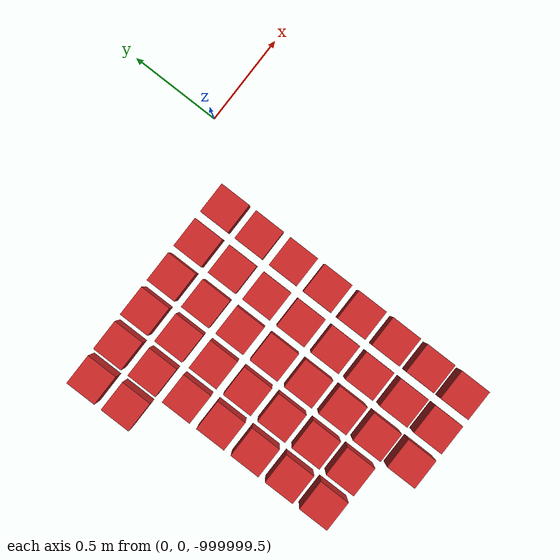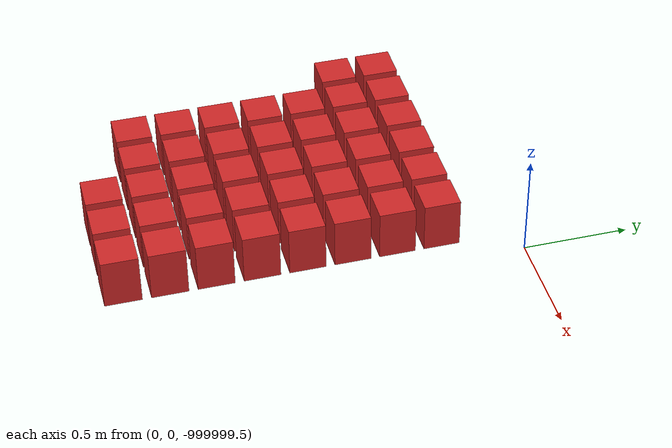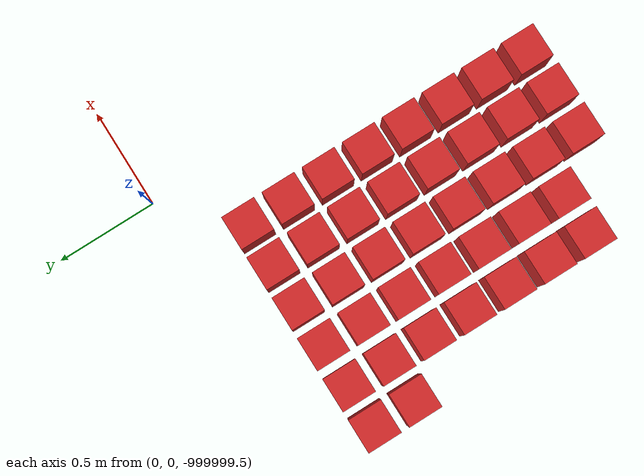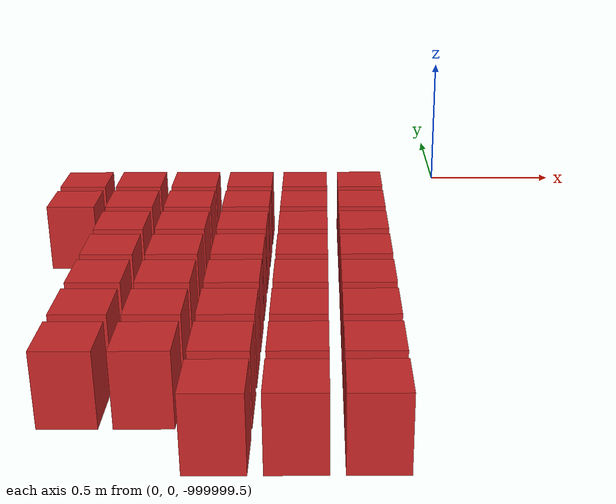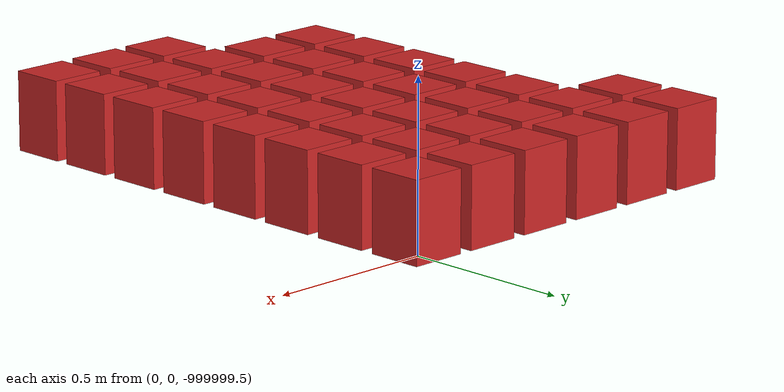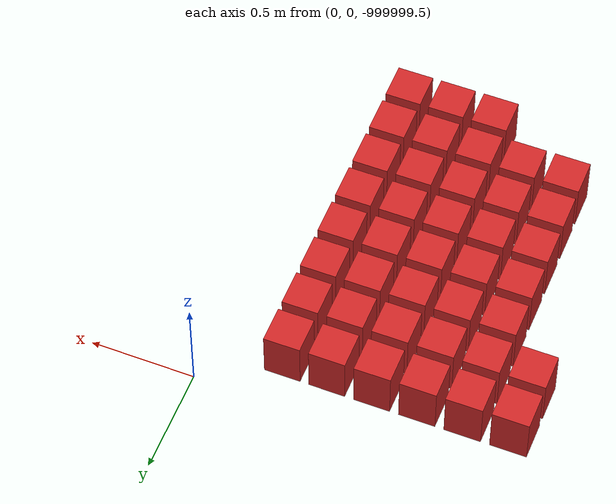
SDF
<sdf version="1.7">
 <world name="default">
  <model name="ground_plane">
   <static>1</static>
   <link name="link">
    <collision name="collision">
     <geometry><plane><normal>0 0 1</normal><size>100 100</size></plane></geometry>
     <surface>
      <contact><collide_bitmask>65535</collide_bitmask></contact>
      <friction><ode><mu>100</mu><mu2>50</mu2></ode></friction>
     </surface>
    </collision>
    <visual name="visual">
     <cast_shadows>0</cast_shadows>
     <geometry><plane><normal>0 0 1</normal><size>100 100</size></plane></geometry>
     <material>
      <script><uri>file://media/materials/scripts/gazebo.material</uri><name>Gazebo/Grey</name></script>
     </material>
    </visual>
   </link>
  </model>
  <model name="wall_77">
   <link name="link">
    <pose>0 0 0.5 0 -0 0</pose>
    <inertial>
     <mass>0.5167</mass>
     <inertia>
      <ixx>0.000861167</ixx>
      <ixy>0</ixy>
      <ixz>0</ixz>
      <iyy>0.000861167</iyy>
      <iyz>0</iyz>
      <izz>0.000861167</izz>
     </inertia>
    </inertial>
    <collision name="collision">
     <geometry><box><size>0.21 0.21 0.25</size></box></geometry>
     <surface>
      <contact>
       <poissons_ratio>0.347</poissons_ratio>
       <elastic_modulus>8.8e+09</elastic_modulus>
       <ode><kp>100000</kp><kd>100</kd><max_vel>100</max_vel><min_depth>0.001</min_depth></ode>
      </contact>
      <friction>
       <torsional>
        <coefficient>1</coefficient>
        <use_patch_radius>0</use_patch_radius>
        <surface_radius>0.01</surface_radius>
       </torsional>
      </friction>
     </surface>
    </collision>
    <visual name="visual">
     <geometry><box><size>0.175 0.175 0.25</size></box></geometry>
     <material>
      <script><uri>file://media/materials/scripts/gazebo.material</uri><name>Gazebo/Red</name></script>
     </material>
    </visual>
   </link>
   <pose>-0.76087 -1.84783 -1e+06 0 -0 0</pose>
  </model>
  <model name="wall_78">
   <link name="link">
    <pose>0 0 0.5 0 -0 0</pose>
    <inertial>
     <mass>0.5167</mass>
     <inertia>
      <ixx>0.000861167</ixx>
      <ixy>0</ixy>
      <ixz>0</ixz>
      <iyy>0.000861167</iyy>
      <iyz>0</iyz>
      <izz>0.000861167</izz>
     </inertia>
    </inertial>
    <collision name="collision">
     <geometry><box><size>0.21 0.21 0.25</size></box></geometry>
     <surface>
      <contact>
       <poissons_ratio>0.347</poissons_ratio>
       <elastic_modulus>8.8e+09</elastic_modulus>
       <ode><kp>100000</kp><kd>100</kd><max_vel>100</max_vel><min_depth>0.001</min_depth></ode>
      </contact>
      <friction>
       <torsional>
        <coefficient>1</coefficient>
        <use_patch_radius>0</use_patch_radius>
        <surface_radius>0.01</surface_radius>
       </torsional>
      </friction>
     </surface>
    </collision>
    <visual name="visual">
     <geometry><box><size>0.175 0.175 0.25</size></box></geometry>
     <material>
      <script><uri>file://media/materials/scripts/gazebo.material</uri><name>Gazebo/Red</name></script>
     </material>
    </visual>
   </link>
   <pose>-0.543478 -1.84783 -1e+06 0 -0 0</pose>
  </model>
  <model name="wall_79">
   <link name="link">
    <pose>0 0 0.5 0 -0 0</pose>
    <inertial>
     <mass>0.5167</mass>
     <inertia>
      <ixx>0.000861167</ixx>
      <ixy>0</ixy>
      <ixz>0</ixz>
      <iyy>0.000861167</iyy>
      <iyz>0</iyz>
      <izz>0.000861167</izz>
     </inertia>
    </inertial>
    <collision name="collision">
     <geometry><box><size>0.21 0.21 0.25</size></box></geometry>
     <surface>
      <contact>
       <poissons_ratio>0.347</poissons_ratio>
       <elastic_modulus>8.8e+09</elastic_modulus>
       <ode><kp>100000</kp><kd>100</kd><max_vel>100</max_vel><min_depth>0.001</min_depth></ode>
      </contact>
      <friction>
       <torsional>
        <coefficient>1</coefficient>
        <use_patch_radius>0</use_patch_radius>
        <surface_radius>0.01</surface_radius>
       </torsional>
      </friction>
     </surface>
    </collision>
    <visual name="visual">
     <geometry><box><size>0.175 0.175 0.25</size></box></geometry>
     <material>
      <script><uri>file://media/materials/scripts/gazebo.material</uri><name>Gazebo/Red</name></script>
     </material>
    </visual>
   </link>
   <pose>-0.326087 -1.84783 -1e+06 0 -0 0</pose>
  </model>
  <model name="wall_98">
   <link name="link">
    <pose>0 0 0.5 0 -0 0</pose>
    <inertial>
     <mass>0.5167</mass>
     <inertia>
      <ixx>0.000861167</ixx>
      <ixy>0</ixy>
      <ixz>0</ixz>
      <iyy>0.000861167</iyy>
      <iyz>0</iyz>
      <izz>0.000861167</izz>
     </inertia>
    </inertial>
    <collision name="collision">
     <geometry><box><size>0.21 0.21 0.25</size></box></geometry>
     <surface>
      <contact>
       <poissons_ratio>0.347</poissons_ratio>
       <elastic_modulus>8.8e+09</elastic_modulus>
       <ode><kp>100000</kp><kd>100</kd><max_vel>100</max_vel><min_depth>0.001</min_depth></ode>
      </contact>
      <friction>
       <torsional>
        <coefficient>1</coefficient>
        <use_patch_radius>0</use_patch_radius>
        <surface_radius>0.01</surface_radius>
       </torsional>
      </friction>
     </surface>
    </collision>
    <visual name="visual">
     <geometry><box><size>0.175 0.175 0.25</size></box></geometry>
     <material>
      <script><uri>file://media/materials/scripts/gazebo.material</uri><name>Gazebo/Red</name></script>
     </material>
    </visual>
   </link>
   <pose>-1.19565 -1.63043 -1e+06 0 -0 0</pose>
  </model>
  <model name="wall_99">
   <link name="link">
    <pose>0 0 0.5 0 -0 0</pose>
    <inertial>
     <mass>0.5167</mass>
     <inertia>
      <ixx>0.000861167</ixx>
      <ixy>0</ixy>
      <ixz>0</ixz>
      <iyy>0.000861167</iyy>
      <iyz>0</iyz>
      <izz>0.000861167</izz>
     </inertia>
    </inertial>
    <collision name="collision">
     <geometry><box><size>0.21 0.21 0.25</size></box></geometry>
     <surface>
      <contact>
       <poissons_ratio>0.347</poissons_ratio>
       <elastic_modulus>8.8e+09</elastic_modulus>
       <ode><kp>100000</kp><kd>100</kd><max_vel>100</max_vel><min_depth>0.001</min_depth></ode>
      </contact>
      <friction>
       <torsional>
        <coefficient>1</coefficient>
        <use_patch_radius>0</use_patch_radius>
        <surface_radius>0.01</surface_radius>
       </torsional>
      </friction>
     </surface>
    </collision>
    <visual name="visual">
     <geometry><box><size>0.175 0.175 0.25</size></box></geometry>
     <material>
      <script><uri>file://media/materials/scripts/gazebo.material</uri><name>Gazebo/Red</name></script>
     </material>
    </visual>
   </link>
   <pose>-0.978261 -1.63043 -1e+06 0 -0 0</pose>
  </model>
  <model name="wall_100">
   <link name="link">
    <pose>0 0 0.5 0 -0 0</pose>
    <inertial>
     <mass>0.5167</mass>
     <inertia>
      <ixx>0.000861167</ixx>
      <ixy>0</ixy>
      <ixz>0</ixz>
      <iyy>0.000861167</iyy>
      <iyz>0</iyz>
      <izz>0.000861167</izz>
     </inertia>
    </inertial>
    <collision name="collision">
     <geometry><box><size>0.21 0.21 0.25</size></box></geometry>
     <surface>
      <contact>
       <poissons_ratio>0.347</poissons_ratio>
       <elastic_modulus>8.8e+09</elastic_modulus>
       <ode><kp>100000</kp><kd>100</kd><max_vel>100</max_vel><min_depth>0.001</min_depth></ode>
      </contact>
      <friction>
       <torsional>
        <coefficient>1</coefficient>
        <use_patch_radius>0</use_patch_radius>
        <surface_radius>0.01</surface_radius>
       </torsional>
      </friction>
     </surface>
    </collision>
    <visual name="visual">
     <geometry><box><size>0.175 0.175 0.25</size></box></geometry>
     <material>
      <script><uri>file://media/materials/scripts/gazebo.material</uri><name>Gazebo/Red</name></script>
     </material>
    </visual>
   </link>
   <pose>-0.76087 -1.63043 -1e+06 0 -0 0</pose>
  </model>
  <model name="wall_101">
   <link name="link">
    <pose>0 0 0.5 0 -0 0</pose>
    <inertial>
     <mass>0.5167</mass>
     <inertia>
      <ixx>0.000861167</ixx>
      <ixy>0</ixy>
      <ixz>0</ixz>
      <iyy>0.000861167</iyy>
      <iyz>0</iyz>
      <izz>0.000861167</izz>
     </inertia>
    </inertial>
    <collision name="collision">
     <geometry><box><size>0.21 0.21 0.25</size></box></geometry>
     <surface>
      <contact>
       <poissons_ratio>0.347</poissons_ratio>
       <elastic_modulus>8.8e+09</elastic_modulus>
       <ode><kp>100000</kp><kd>100</kd><max_vel>100</max_vel><min_depth>0.001</min_depth></ode>
      </contact>
      <friction>
       <torsional>
        <coefficient>1</coefficient>
        <use_patch_radius>0</use_patch_radius>
        <surface_radius>0.01</surface_radius>
       </torsional>
      </friction>
     </surface>
    </collision>
    <visual name="visual">
     <geometry><box><size>0.175 0.175 0.25</size></box></geometry>
     <material>
      <script><uri>file://media/materials/scripts/gazebo.material</uri><name>Gazebo/Red</name></script>
     </material>
    </visual>
   </link>
   <pose>-0.543478 -1.63043 -1e+06 0 -0 0</pose>
  </model>
  <model name="wall_102">
   <link name="link">
    <pose>0 0 0.5 0 -0 0</pose>
    <inertial>
     <mass>0.5167</mass>
     <inertia>
      <ixx>0.000861167</ixx>
      <ixy>0</ixy>
      <ixz>0</ixz>
      <iyy>0.000861167</iyy>
      <iyz>0</iyz>
      <izz>0.000861167</izz>
     </inertia>
    </inertial>
    <collision name="collision">
     <geometry><box><size>0.21 0.21 0.25</size></box></geometry>
     <surface>
      <contact>
       <poissons_ratio>0.347</poissons_ratio>
       <elastic_modulus>8.8e+09</elastic_modulus>
       <ode><kp>100000</kp><kd>100</kd><max_vel>100</max_vel><min_depth>0.001</min_depth></ode>
      </contact>
      <friction>
       <torsional>
        <coefficient>1</coefficient>
        <use_patch_radius>0</use_patch_radius>
        <surface_radius>0.01</surface_radius>
       </torsional>
      </friction>
     </surface>
    </collision>
    <visual name="visual">
     <geometry><box><size>0.175 0.175 0.25</size></box></geometry>
     <material>
      <script><uri>file://media/materials/scripts/gazebo.material</uri><name>Gazebo/Red</name></script>
     </material>
    </visual>
   </link>
   <pose>-0.326087 -1.63043 -1e+06 0 -0 0</pose>
  </model>
  <model name="wall_121">
   <link name="link">
    <pose>0 0 0.5 0 -0 0</pose>
    <inertial>
     <mass>0.5167</mass>
     <inertia>
      <ixx>0.000861167</ixx>
      <ixy>0</ixy>
      <ixz>0</ixz>
      <iyy>0.000861167</iyy>
      <iyz>0</iyz>
      <izz>0.000861167</izz>
     </inertia>
    </inertial>
    <collision name="collision">
     <geometry><box><size>0.21 0.21 0.25</size></box></geometry>
     <surface>
      <contact>
       <poissons_ratio>0.347</poissons_ratio>
       <elastic_modulus>8.8e+09</elastic_modulus>
       <ode><kp>100000</kp><kd>100</kd><max_vel>100</max_vel><min_depth>0.001</min_depth></ode>
      </contact>
      <friction>
       <torsional>
        <coefficient>1</coefficient>
        <use_patch_radius>0</use_patch_radius>
        <surface_radius>0.01</surface_radius>
       </torsional>
      </friction>
     </surface>
    </collision>
    <visual name="visual">
     <geometry><box><size>0.175 0.175 0.25</size></box></geometry>
     <material>
      <script><uri>file://media/materials/scripts/gazebo.material</uri><name>Gazebo/Red</name></script>
     </material>
    </visual>
   </link>
   <pose>-1.19565 -1.41304 -1e+06 0 -0 0</pose>
  </model>
  <model name="wall_122">
   <link name="link">
    <pose>0 0 0.5 0 -0 0</pose>
    <inertial>
     <mass>0.5167</mass>
     <inertia>
      <ixx>0.000861167</ixx>
      <ixy>0</ixy>
      <ixz>0</ixz>
      <iyy>0.000861167</iyy>
      <iyz>0</iyz>
      <izz>0.000861167</izz>
     </inertia>
    </inertial>
    <collision name="collision">
     <geometry><box><size>0.21 0.21 0.25</size></box></geometry>
     <surface>
      <contact>
       <poissons_ratio>0.347</poissons_ratio>
       <elastic_modulus>8.8e+09</elastic_modulus>
       <ode><kp>100000</kp><kd>100</kd><max_vel>100</max_vel><min_depth>0.001</min_depth></ode>
      </contact>
      <friction>
       <torsional>
        <coefficient>1</coefficient>
        <use_patch_radius>0</use_patch_radius>
        <surface_radius>0.01</surface_radius>
       </torsional>
      </friction>
     </surface>
    </collision>
    <visual name="visual">
     <geometry><box><size>0.175 0.175 0.25</size></box></geometry>
     <material>
      <script><uri>file://media/materials/scripts/gazebo.material</uri><name>Gazebo/Red</name></script>
     </material>
    </visual>
   </link>
   <pose>-0.978261 -1.41304 -1e+06 0 -0 0</pose>
  </model>
  <model name="wall_123">
   <link name="link">
    <pose>0 0 0.5 0 -0 0</pose>
    <inertial>
     <mass>0.5167</mass>
     <inertia>
      <ixx>0.000861167</ixx>
      <ixy>0</ixy>
      <ixz>0</ixz>
      <iyy>0.000861167</iyy>
      <iyz>0</iyz>
      <izz>0.000861167</izz>
     </inertia>
    </inertial>
    <collision name="collision">
     <geometry><box><size>0.21 0.21 0.25</size></box></geometry>
     <surface>
      <contact>
       <poissons_ratio>0.347</poissons_ratio>
       <elastic_modulus>8.8e+09</elastic_modulus>
       <ode><kp>100000</kp><kd>100</kd><max_vel>100</max_vel><min_depth>0.001</min_depth></ode>
      </contact>
      <friction>
       <torsional>
        <coefficient>1</coefficient>
        <use_patch_radius>0</use_patch_radius>
        <surface_radius>0.01</surface_radius>
       </torsional>
      </friction>
     </surface>
    </collision>
    <visual name="visual">
     <geometry><box><size>0.175 0.175 0.25</size></box></geometry>
     <material>
      <script><uri>file://media/materials/scripts/gazebo.material</uri><name>Gazebo/Red</name></script>
     </material>
    </visual>
   </link>
   <pose>-0.76087 -1.41304 -1e+06 0 -0 0</pose>
  </model>
  <model name="wall_124">
   <link name="link">
    <pose>0 0 0.5 0 -0 0</pose>
    <inertial>
     <mass>0.5167</mass>
     <inertia>
      <ixx>0.000861167</ixx>
      <ixy>0</ixy>
      <ixz>0</ixz>
      <iyy>0.000861167</iyy>
      <iyz>0</iyz>
      <izz>0.000861167</izz>
     </inertia>
    </inertial>
    <collision name="collision">
     <geometry><box><size>0.21 0.21 0.25</size></box></geometry>
     <surface>
      <contact>
       <poissons_ratio>0.347</poissons_ratio>
       <elastic_modulus>8.8e+09</elastic_modulus>
       <ode><kp>100000</kp><kd>100</kd><max_vel>100</max_vel><min_depth>0.001</min_depth></ode>
      </contact>
      <friction>
       <torsional>
        <coefficient>1</coefficient>
        <use_patch_radius>0</use_patch_radius>
        <surface_radius>0.01</surface_radius>
       </torsional>
      </friction>
     </surface>
    </collision>
    <visual name="visual">
     <geometry><box><size>0.175 0.175 0.25</size></box></geometry>
     <material>
      <script><uri>file://media/materials/scripts/gazebo.material</uri><name>Gazebo/Red</name></script>
     </material>
    </visual>
   </link>
   <pose>-0.543478 -1.41304 -1e+06 0 -0 0</pose>
  </model>
  <model name="wall_125">
   <link name="link">
    <pose>0 0 0.5 0 -0 0</pose>
    <inertial>
     <mass>0.5167</mass>
     <inertia>
      <ixx>0.000861167</ixx>
      <ixy>0</ixy>
      <ixz>0</ixz>
      <iyy>0.000861167</iyy>
      <iyz>0</iyz>
      <izz>0.000861167</izz>
     </inertia>
    </inertial>
    <collision name="collision">
     <geometry><box><size>0.21 0.21 0.25</size></box></geometry>
     <surface>
      <contact>
       <poissons_ratio>0.347</poissons_ratio>
       <elastic_modulus>8.8e+09</elastic_modulus>
       <ode><kp>100000</kp><kd>100</kd><max_vel>100</max_vel><min_depth>0.001</min_depth></ode>
      </contact>
      <friction>
       <torsional>
        <coefficient>1</coefficient>
        <use_patch_radius>0</use_patch_radius>
        <surface_radius>0.01</surface_radius>
       </torsional>
      </friction>
     </surface>
    </collision>
    <visual name="visual">
     <geometry><box><size>0.175 0.175 0.25</size></box></geometry>
     <material>
      <script><uri>file://media/materials/scripts/gazebo.material</uri><name>Gazebo/Red</name></script>
     </material>
    </visual>
   </link>
   <pose>-0.326087 -1.41304 -1e+06 0 -0 0</pose>
  </model>
  <model name="wall_144">
   <link name="link">
    <pose>0 0 0.5 0 -0 0</pose>
    <inertial>
     <mass>0.5167</mass>
     <inertia>
      <ixx>0.000861167</ixx>
      <ixy>0</ixy>
      <ixz>0</ixz>
      <iyy>0.000861167</iyy>
      <iyz>0</iyz>
      <izz>0.000861167</izz>
     </inertia>
    </inertial>
    <collision name="collision">
     <geometry><box><size>0.21 0.21 0.25</size></box></geometry>
     <surface>
      <contact>
       <poissons_ratio>0.347</poissons_ratio>
       <elastic_modulus>8.8e+09</elastic_modulus>
       <ode><kp>100000</kp><kd>100</kd><max_vel>100</max_vel><min_depth>0.001</min_depth></ode>
      </contact>
      <friction>
       <torsional>
        <coefficient>1</coefficient>
        <use_patch_radius>0</use_patch_radius>
        <surface_radius>0.01</surface_radius>
       </torsional>
      </friction>
     </surface>
    </collision>
    <visual name="visual">
     <geometry><box><size>0.175 0.175 0.25</size></box></geometry>
     <material>
      <script><uri>file://media/materials/scripts/gazebo.material</uri><name>Gazebo/Red</name></script>
     </material>
    </visual>
   </link>
   <pose>-1.19565 -1.19565 -1e+06 0 -0 0</pose>
  </model>
  <model name="wall_145">
   <link name="link">
    <pose>0 0 0.5 0 -0 0</pose>
    <inertial>
     <mass>0.5167</mass>
     <inertia>
      <ixx>0.000861167</ixx>
      <ixy>0</ixy>
      <ixz>0</ixz>
      <iyy>0.000861167</iyy>
      <iyz>0</iyz>
      <izz>0.000861167</izz>
     </inertia>
    </inertial>
    <collision name="collision">
     <geometry><box><size>0.21 0.21 0.25</size></box></geometry>
     <surface>
      <contact>
       <poissons_ratio>0.347</poissons_ratio>
       <elastic_modulus>8.8e+09</elastic_modulus>
       <ode><kp>100000</kp><kd>100</kd><max_vel>100</max_vel><min_depth>0.001</min_depth></ode>
      </contact>
      <friction>
       <torsional>
        <coefficient>1</coefficient>
        <use_patch_radius>0</use_patch_radius>
        <surface_radius>0.01</surface_radius>
       </torsional>
      </friction>
     </surface>
    </collision>
    <visual name="visual">
     <geometry><box><size>0.175 0.175 0.25</size></box></geometry>
     <material>
      <script><uri>file://media/materials/scripts/gazebo.material</uri><name>Gazebo/Red</name></script>
     </material>
    </visual>
   </link>
   <pose>-0.978261 -1.19565 -1e+06 0 -0 0</pose>
  </model>
  <model name="wall_146">
   <link name="link">
    <pose>0 0 0.5 0 -0 0</pose>
    <inertial>
     <mass>0.5167</mass>
     <inertia>
      <ixx>0.000861167</ixx>
      <ixy>0</ixy>
      <ixz>0</ixz>
      <iyy>0.000861167</iyy>
      <iyz>0</iyz>
      <izz>0.000861167</izz>
     </inertia>
    </inertial>
    <collision name="collision">
     <geometry><box><size>0.21 0.21 0.25</size></box></geometry>
     <surface>
      <contact>
       <poissons_ratio>0.347</poissons_ratio>
       <elastic_modulus>8.8e+09</elastic_modulus>
       <ode><kp>100000</kp><kd>100</kd><max_vel>100</max_vel><min_depth>0.001</min_depth></ode>
      </contact>
      <friction>
       <torsional>
        <coefficient>1</coefficient>
        <use_patch_radius>0</use_patch_radius>
        <surface_radius>0.01</surface_radius>
       </torsional>
      </friction>
     </surface>
    </collision>
    <visual name="visual">
     <geometry><box><size>0.175 0.175 0.25</size></box></geometry>
     <material>
      <script><uri>file://media/materials/scripts/gazebo.material</uri><name>Gazebo/Red</name></script>
     </material>
    </visual>
   </link>
   <pose>-0.76087 -1.19565 -1e+06 0 -0 0</pose>
  </model>
  <model name="wall_147">
   <link name="link">
    <pose>0 0 0.5 0 -0 0</pose>
    <inertial>
     <mass>0.5167</mass>
     <inertia>
      <ixx>0.000861167</ixx>
      <ixy>0</ixy>
      <ixz>0</ixz>
      <iyy>0.000861167</iyy>
      <iyz>0</iyz>
      <izz>0.000861167</izz>
     </inertia>
    </inertial>
    <collision name="collision">
     <geometry><box><size>0.21 0.21 0.25</size></box></geometry>
     <surface>
      <contact>
       <poissons_ratio>0.347</poissons_ratio>
       <elastic_modulus>8.8e+09</elastic_modulus>
       <ode><kp>100000</kp><kd>100</kd><max_vel>100</max_vel><min_depth>0.001</min_depth></ode>
      </contact>
      <friction>
       <torsional>
        <coefficient>1</coefficient>
        <use_patch_radius>0</use_patch_radius>
        <surface_radius>0.01</surface_radius>
       </torsional>
      </friction>
     </surface>
    </collision>
    <visual name="visual">
     <geometry><box><size>0.175 0.175 0.25</size></box></geometry>
     <material>
      <script><uri>file://media/materials/scripts/gazebo.material</uri><name>Gazebo/Red</name></script>
     </material>
    </visual>
   </link>
   <pose>-0.543478 -1.19565 -1e+06 0 -0 0</pose>
  </model>
  <model name="wall_148">
   <link name="link">
    <pose>0 0 0.5 0 -0 0</pose>
    <inertial>
     <mass>0.5167</mass>
     <inertia>
      <ixx>0.000861167</ixx>
      <ixy>0</ixy>
      <ixz>0</ixz>
      <iyy>0.000861167</iyy>
      <iyz>0</iyz>
      <izz>0.000861167</izz>
     </inertia>
    </inertial>
    <collision name="collision">
     <geometry><box><size>0.21 0.21 0.25</size></box></geometry>
     <surface>
      <contact>
       <poissons_ratio>0.347</poissons_ratio>
       <elastic_modulus>8.8e+09</elastic_modulus>
       <ode><kp>100000</kp><kd>100</kd><max_vel>100</max_vel><min_depth>0.001</min_depth></ode>
      </contact>
      <friction>
       <torsional>
        <coefficient>1</coefficient>
        <use_patch_radius>0</use_patch_radius>
        <surface_radius>0.01</surface_radius>
       </torsional>
      </friction>
     </surface>
    </collision>
    <visual name="visual">
     <geometry><box><size>0.175 0.175 0.25</size></box></geometry>
     <material>
      <script><uri>file://media/materials/scripts/gazebo.material</uri><name>Gazebo/Red</name></script>
     </material>
    </visual>
   </link>
   <pose>-0.326087 -1.19565 -1e+06 0 -0 0</pose>
  </model>
  <model name="wall_167">
   <link name="link">
    <pose>0 0 0.5 0 -0 0</pose>
    <inertial>
     <mass>0.5167</mass>
     <inertia>
      <ixx>0.000861167</ixx>
      <ixy>0</ixy>
      <ixz>0</ixz>
      <iyy>0.000861167</iyy>
      <iyz>0</iyz>
      <izz>0.000861167</izz>
     </inertia>
    </inertial>
    <collision name="collision">
     <geometry><box><size>0.21 0.21 0.25</size></box></geometry>
     <surface>
      <contact>
       <poissons_ratio>0.347</poissons_ratio>
       <elastic_modulus>8.8e+09</elastic_modulus>
       <ode><kp>100000</kp><kd>100</kd><max_vel>100</max_vel><min_depth>0.001</min_depth></ode>
      </contact>
      <friction>
       <torsional>
        <coefficient>1</coefficient>
        <use_patch_radius>0</use_patch_radius>
        <surface_radius>0.01</surface_radius>
       </torsional>
      </friction>
     </surface>
    </collision>
    <visual name="visual">
     <geometry><box><size>0.175 0.175 0.25</size></box></geometry>
     <material>
      <script><uri>file://media/materials/scripts/gazebo.material</uri><name>Gazebo/Red</name></script>
     </material>
    </visual>
   </link>
   <pose>-1.19565 -0.978261 -1e+06 0 -0 0</pose>
  </model>
  <model name="wall_168">
   <link name="link">
    <pose>0 0 0.5 0 -0 0</pose>
    <inertial>
     <mass>0.5167</mass>
     <inertia>
      <ixx>0.000861167</ixx>
      <ixy>0</ixy>
      <ixz>0</ixz>
      <iyy>0.000861167</iyy>
      <iyz>0</iyz>
      <izz>0.000861167</izz>
     </inertia>
    </inertial>
    <collision name="collision">
     <geometry><box><size>0.21 0.21 0.25</size></box></geometry>
     <surface>
      <contact>
       <poissons_ratio>0.347</poissons_ratio>
       <elastic_modulus>8.8e+09</elastic_modulus>
       <ode><kp>100000</kp><kd>100</kd><max_vel>100</max_vel><min_depth>0.001</min_depth></ode>
      </contact>
      <friction>
       <torsional>
        <coefficient>1</coefficient>
        <use_patch_radius>0</use_patch_radius>
        <surface_radius>0.01</surface_radius>
       </torsional>
      </friction>
     </surface>
    </collision>
    <visual name="visual">
     <geometry><box><size>0.175 0.175 0.25</size></box></geometry>
     <material>
      <script><uri>file://media/materials/scripts/gazebo.material</uri><name>Gazebo/Red</name></script>
     </material>
    </visual>
   </link>
   <pose>-0.978261 -0.978261 -1e+06 0 -0 0</pose>
  </model>
  <model name="wall_169">
   <link name="link">
    <pose>0 0 0.5 0 -0 0</pose>
    <inertial>
     <mass>0.5167</mass>
     <inertia>
      <ixx>0.000861167</ixx>
      <ixy>0</ixy>
      <ixz>0</ixz>
      <iyy>0.000861167</iyy>
      <iyz>0</iyz>
      <izz>0.000861167</izz>
     </inertia>
    </inertial>
    <collision name="collision">
     <geometry><box><size>0.21 0.21 0.25</size></box></geometry>
     <surface>
      <contact>
       <poissons_ratio>0.347</poissons_ratio>
       <elastic_modulus>8.8e+09</elastic_modulus>
       <ode><kp>100000</kp><kd>100</kd><max_vel>100</max_vel><min_depth>0.001</min_depth></ode>
      </contact>
      <friction>
       <torsional>
        <coefficient>1</coefficient>
        <use_patch_radius>0</use_patch_radius>
        <surface_radius>0.01</surface_radius>
       </torsional>
      </friction>
     </surface>
    </collision>
    <visual name="visual">
     <geometry><box><size>0.175 0.175 0.25</size></box></geometry>
     <material>
      <script><uri>file://media/materials/scripts/gazebo.material</uri><name>Gazebo/Red</name></script>
     </material>
    </visual>
   </link>
   <pose>-0.76087 -0.978261 -1e+06 0 -0 0</pose>
  </model>
  <model name="wall_170">
   <link name="link">
    <pose>0 0 0.5 0 -0 0</pose>
    <inertial>
     <mass>0.5167</mass>
     <inertia>
      <ixx>0.000861167</ixx>
      <ixy>0</ixy>
      <ixz>0</ixz>
      <iyy>0.000861167</iyy>
      <iyz>0</iyz>
      <izz>0.000861167</izz>
     </inertia>
    </inertial>
    <collision name="collision">
     <geometry><box><size>0.21 0.21 0.25</size></box></geometry>
     <surface>
      <contact>
       <poissons_ratio>0.347</poissons_ratio>
       <elastic_modulus>8.8e+09</elastic_modulus>
       <ode><kp>100000</kp><kd>100</kd><max_vel>100</max_vel><min_depth>0.001</min_depth></ode>
      </contact>
      <friction>
       <torsional>
        <coefficient>1</coefficient>
        <use_patch_radius>0</use_patch_radius>
        <surface_radius>0.01</surface_radius>
       </torsional>
      </friction>
     </surface>
    </collision>
    <visual name="visual">
     <geometry><box><size>0.175 0.175 0.25</size></box></geometry>
     <material>
      <script><uri>file://media/materials/scripts/gazebo.material</uri><name>Gazebo/Red</name></script>
     </material>
    </visual>
   </link>
   <pose>-0.543478 -0.978261 -1e+06 0 -0 0</pose>
  </model>
  <model name="wall_171">
   <link name="link">
    <pose>0 0 0.5 0 -0 0</pose>
    <inertial>
     <mass>0.5167</mass>
     <inertia>
      <ixx>0.000861167</ixx>
      <ixy>0</ixy>
      <ixz>0</ixz>
      <iyy>0.000861167</iyy>
      <iyz>0</iyz>
      <izz>0.000861167</izz>
     </inertia>
    </inertial>
    <collision name="collision">
     <geometry><box><size>0.21 0.21 0.25</size></box></geometry>
     <surface>
      <contact>
       <poissons_ratio>0.347</poissons_ratio>
       <elastic_modulus>8.8e+09</elastic_modulus>
       <ode><kp>100000</kp><kd>100</kd><max_vel>100</max_vel><min_depth>0.001</min_depth></ode>
      </contact>
      <friction>
       <torsional>
        <coefficient>1</coefficient>
        <use_patch_radius>0</use_patch_radius>
        <surface_radius>0.01</surface_radius>
       </torsional>
      </friction>
     </surface>
    </collision>
    <visual name="visual">
     <geometry><box><size>0.175 0.175 0.25</size></box></geometry>
     <material>
      <script><uri>file://media/materials/scripts/gazebo.material</uri><name>Gazebo/Red</name></script>
     </material>
    </visual>
   </link>
   <pose>-0.326087 -0.978261 -1e+06 0 -0 0</pose>
  </model>
  <model name="wall_190">
   <link name="link">
    <pose>0 0 0.5 0 -0 0</pose>
    <inertial>
     <mass>0.5167</mass>
     <inertia>
      <ixx>0.000861167</ixx>
      <ixy>0</ixy>
      <ixz>0</ixz>
      <iyy>0.000861167</iyy>
      <iyz>0</iyz>
      <izz>0.000861167</izz>
     </inertia>
    </inertial>
    <collision name="collision">
     <geometry><box><size>0.21 0.21 0.25</size></box></geometry>
     <surface>
      <contact>
       <poissons_ratio>0.347</poissons_ratio>
       <elastic_modulus>8.8e+09</elastic_modulus>
       <ode><kp>100000</kp><kd>100</kd><max_vel>100</max_vel><min_depth>0.001</min_depth></ode>
      </contact>
      <friction>
       <torsional>
        <coefficient>1</coefficient>
        <use_patch_radius>0</use_patch_radius>
        <surface_radius>0.01</surface_radius>
       </torsional>
      </friction>
     </surface>
    </collision>
    <visual name="visual">
     <geometry><box><size>0.175 0.175 0.25</size></box></geometry>
     <material>
      <script><uri>file://media/materials/scripts/gazebo.material</uri><name>Gazebo/Red</name></script>
     </material>
    </visual>
   </link>
   <pose>-1.19565 -0.76087 -1e+06 0 -0 0</pose>
  </model>
  <model name="wall_191">
   <link name="link">
    <pose>0 0 0.5 0 -0 0</pose>
    <inertial>
     <mass>0.5167</mass>
     <inertia>
      <ixx>0.000861167</ixx>
      <ixy>0</ixy>
      <ixz>0</ixz>
      <iyy>0.000861167</iyy>
      <iyz>0</iyz>
      <izz>0.000861167</izz>
     </inertia>
    </inertial>
    <collision name="collision">
     <geometry><box><size>0.21 0.21 0.25</size></box></geometry>
     <surface>
      <contact>
       <poissons_ratio>0.347</poissons_ratio>
       <elastic_modulus>8.8e+09</elastic_modulus>
       <ode><kp>100000</kp><kd>100</kd><max_vel>100</max_vel><min_depth>0.001</min_depth></ode>
      </contact>
      <friction>
       <torsional>
        <coefficient>1</coefficient>
        <use_patch_radius>0</use_patch_radius>
        <surface_radius>0.01</surface_radius>
       </torsional>
      </friction>
     </surface>
    </collision>
    <visual name="visual">
     <geometry><box><size>0.175 0.175 0.25</size></box></geometry>
     <material>
      <script><uri>file://media/materials/scripts/gazebo.material</uri><name>Gazebo/Red</name></script>
     </material>
    </visual>
   </link>
   <pose>-0.978261 -0.76087 -1e+06 0 -0 0</pose>
  </model>
  <model name="wall_192">
   <link name="link">
    <pose>0 0 0.5 0 -0 0</pose>
    <inertial>
     <mass>0.5167</mass>
     <inertia>
      <ixx>0.000861167</ixx>
      <ixy>0</ixy>
      <ixz>0</ixz>
      <iyy>0.000861167</iyy>
      <iyz>0</iyz>
      <izz>0.000861167</izz>
     </inertia>
    </inertial>
    <collision name="collision">
     <geometry><box><size>0.21 0.21 0.25</size></box></geometry>
     <surface>
      <contact>
       <poissons_ratio>0.347</poissons_ratio>
       <elastic_modulus>8.8e+09</elastic_modulus>
       <ode><kp>100000</kp><kd>100</kd><max_vel>100</max_vel><min_depth>0.001</min_depth></ode>
      </contact>
      <friction>
       <torsional>
        <coefficient>1</coefficient>
        <use_patch_radius>0</use_patch_radius>
        <surface_radius>0.01</surface_radius>
       </torsional>
      </friction>
     </surface>
    </collision>
    <visual name="visual">
     <geometry><box><size>0.175 0.175 0.25</size></box></geometry>
     <material>
      <script><uri>file://media/materials/scripts/gazebo.material</uri><name>Gazebo/Red</name></script>
     </material>
    </visual>
   </link>
   <pose>-0.76087 -0.76087 -1e+06 0 -0 0</pose>
  </model>
  <model name="wall_193">
   <link name="link">
    <pose>0 0 0.5 0 -0 0</pose>
    <inertial>
     <mass>0.5167</mass>
     <inertia>
      <ixx>0.000861167</ixx>
      <ixy>0</ixy>
      <ixz>0</ixz>
      <iyy>0.000861167</iyy>
      <iyz>0</iyz>
      <izz>0.000861167</izz>
     </inertia>
    </inertial>
    <collision name="collision">
     <geometry><box><size>0.21 0.21 0.25</size></box></geometry>
     <surface>
      <contact>
       <poissons_ratio>0.347</poissons_ratio>
       <elastic_modulus>8.8e+09</elastic_modulus>
       <ode><kp>100000</kp><kd>100</kd><max_vel>100</max_vel><min_depth>0.001</min_depth></ode>
      </contact>
      <friction>
       <torsional>
        <coefficient>1</coefficient>
        <use_patch_radius>0</use_patch_radius>
        <surface_radius>0.01</surface_radius>
       </torsional>
      </friction>
     </surface>
    </collision>
    <visual name="visual">
     <geometry><box><size>0.175 0.175 0.25</size></box></geometry>
     <material>
      <script><uri>file://media/materials/scripts/gazebo.material</uri><name>Gazebo/Red</name></script>
     </material>
    </visual>
   </link>
   <pose>-0.543478 -0.76087 -1e+06 0 -0 0</pose>
  </model>
  <model name="wall_194">
   <link name="link">
    <pose>0 0 0.5 0 -0 0</pose>
    <inertial>
     <mass>0.5167</mass>
     <inertia>
      <ixx>0.000861167</ixx>
      <ixy>0</ixy>
      <ixz>0</ixz>
      <iyy>0.000861167</iyy>
      <iyz>0</iyz>
      <izz>0.000861167</izz>
     </inertia>
    </inertial>
    <collision name="collision">
     <geometry><box><size>0.21 0.21 0.25</size></box></geometry>
     <surface>
      <contact>
       <poissons_ratio>0.347</poissons_ratio>
       <elastic_modulus>8.8e+09</elastic_modulus>
       <ode><kp>100000</kp><kd>100</kd><max_vel>100</max_vel><min_depth>0.001</min_depth></ode>
      </contact>
      <friction>
       <torsional>
        <coefficient>1</coefficient>
        <use_patch_radius>0</use_patch_radius>
        <surface_radius>0.01</surface_radius>
       </torsional>
      </friction>
     </surface>
    </collision>
    <visual name="visual">
     <geometry><box><size>0.175 0.175 0.25</size></box></geometry>
     <material>
      <script><uri>file://media/materials/scripts/gazebo.material</uri><name>Gazebo/Red</name></script>
     </material>
    </visual>
   </link>
   <pose>-0.326087 -0.76087 -1e+06 0 -0 0</pose>
  </model>
  <model name="wall_212">
   <link name="link">
    <pose>0 0 0.5 0 -0 0</pose>
    <inertial>
     <mass>0.5167</mass>
     <inertia>
      <ixx>0.000861167</ixx>
      <ixy>0</ixy>
      <ixz>0</ixz>
      <iyy>0.000861167</iyy>
      <iyz>0</iyz>
      <izz>0.000861167</izz>
     </inertia>
    </inertial>
    <collision name="collision">
     <geometry><box><size>0.21 0.21 0.25</size></box></geometry>
     <surface>
      <contact>
       <poissons_ratio>0.347</poissons_ratio>
       <elastic_modulus>8.8e+09</elastic_modulus>
       <ode><kp>100000</kp><kd>100</kd><max_vel>100</max_vel><min_depth>0.001</min_depth></ode>
      </contact>
      <friction>
       <torsional>
        <coefficient>1</coefficient>
        <use_patch_radius>0</use_patch_radius>
        <surface_radius>0.01</surface_radius>
       </torsional>
      </friction>
     </surface>
    </collision>
    <visual name="visual">
     <geometry><box><size>0.175 0.175 0.25</size></box></geometry>
     <material>
      <script><uri>file://media/materials/scripts/gazebo.material</uri><name>Gazebo/Red</name></script>
     </material>
    </visual>
   </link>
   <pose>-1.41304 -0.543478 -1e+06 0 -0 0</pose>
  </model>
  <model name="wall_213">
   <link name="link">
    <pose>0 0 0.5 0 -0 0</pose>
    <inertial>
     <mass>0.5167</mass>
     <inertia>
      <ixx>0.000861167</ixx>
      <ixy>0</ixy>
      <ixz>0</ixz>
      <iyy>0.000861167</iyy>
      <iyz>0</iyz>
      <izz>0.000861167</izz>
     </inertia>
    </inertial>
    <collision name="collision">
     <geometry><box><size>0.21 0.21 0.25</size></box></geometry>
     <surface>
      <contact>
       <poissons_ratio>0.347</poissons_ratio>
       <elastic_modulus>8.8e+09</elastic_modulus>
       <ode><kp>100000</kp><kd>100</kd><max_vel>100</max_vel><min_depth>0.001</min_depth></ode>
      </contact>
      <friction>
       <torsional>
        <coefficient>1</coefficient>
        <use_patch_radius>0</use_patch_radius>
        <surface_radius>0.01</surface_radius>
       </torsional>
      </friction>
     </surface>
    </collision>
    <visual name="visual">
     <geometry><box><size>0.175 0.175 0.25</size></box></geometry>
     <material>
      <script><uri>file://media/materials/scripts/gazebo.material</uri><name>Gazebo/Red</name></script>
     </material>
    </visual>
   </link>
   <pose>-1.19565 -0.543478 -1e+06 0 -0 0</pose>
  </model>
  <model name="wall_214">
   <link name="link">
    <pose>0 0 0.5 0 -0 0</pose>
    <inertial>
     <mass>0.5167</mass>
     <inertia>
      <ixx>0.000861167</ixx>
      <ixy>0</ixy>
      <ixz>0</ixz>
      <iyy>0.000861167</iyy>
      <iyz>0</iyz>
      <izz>0.000861167</izz>
     </inertia>
    </inertial>
    <collision name="collision">
     <geometry><box><size>0.21 0.21 0.25</size></box></geometry>
     <surface>
      <contact>
       <poissons_ratio>0.347</poissons_ratio>
       <elastic_modulus>8.8e+09</elastic_modulus>
       <ode><kp>100000</kp><kd>100</kd><max_vel>100</max_vel><min_depth>0.001</min_depth></ode>
      </contact>
      <friction>
       <torsional>
        <coefficient>1</coefficient>
        <use_patch_radius>0</use_patch_radius>
        <surface_radius>0.01</surface_radius>
       </torsional>
      </friction>
     </surface>
    </collision>
    <visual name="visual">
     <geometry><box><size>0.175 0.175 0.25</size></box></geometry>
     <material>
      <script><uri>file://media/materials/scripts/gazebo.material</uri><name>Gazebo/Red</name></script>
     </material>
    </visual>
   </link>
   <pose>-0.978261 -0.543478 -1e+06 0 -0 0</pose>
  </model>
  <model name="wall_215">
   <link name="link">
    <pose>0 0 0.5 0 -0 0</pose>
    <inertial>
     <mass>0.5167</mass>
     <inertia>
      <ixx>0.000861167</ixx>
      <ixy>0</ixy>
      <ixz>0</ixz>
      <iyy>0.000861167</iyy>
      <iyz>0</iyz>
      <izz>0.000861167</izz>
     </inertia>
    </inertial>
    <collision name="collision">
     <geometry><box><size>0.21 0.21 0.25</size></box></geometry>
     <surface>
      <contact>
       <poissons_ratio>0.347</poissons_ratio>
       <elastic_modulus>8.8e+09</elastic_modulus>
       <ode><kp>100000</kp><kd>100</kd><max_vel>100</max_vel><min_depth>0.001</min_depth></ode>
      </contact>
      <friction>
       <torsional>
        <coefficient>1</coefficient>
        <use_patch_radius>0</use_patch_radius>
        <surface_radius>0.01</surface_radius>
       </torsional>
      </friction>
     </surface>
    </collision>
    <visual name="visual">
     <geometry><box><size>0.175 0.175 0.25</size></box></geometry>
     <material>
      <script><uri>file://media/materials/scripts/gazebo.material</uri><name>Gazebo/Red</name></script>
     </material>
    </visual>
   </link>
   <pose>-0.76087 -0.543478 -1e+06 0 -0 0</pose>
  </model>
  <model name="wall_216">
   <link name="link">
    <pose>0 0 0.5 0 -0 0</pose>
    <inertial>
     <mass>0.5167</mass>
     <inertia>
      <ixx>0.000861167</ixx>
      <ixy>0</ixy>
      <ixz>0</ixz>
      <iyy>0.000861167</iyy>
      <iyz>0</iyz>
      <izz>0.000861167</izz>
     </inertia>
    </inertial>
    <collision name="collision">
     <geometry><box><size>0.21 0.21 0.25</size></box></geometry>
     <surface>
      <contact>
       <poissons_ratio>0.347</poissons_ratio>
       <elastic_modulus>8.8e+09</elastic_modulus>
       <ode><kp>100000</kp><kd>100</kd><max_vel>100</max_vel><min_depth>0.001</min_depth></ode>
      </contact>
      <friction>
       <torsional>
        <coefficient>1</coefficient>
        <use_patch_radius>0</use_patch_radius>
        <surface_radius>0.01</surface_radius>
       </torsional>
      </friction>
     </surface>
    </collision>
    <visual name="visual">
     <geometry><box><size>0.175 0.175 0.25</size></box></geometry>
     <material>
      <script><uri>file://media/materials/scripts/gazebo.material</uri><name>Gazebo/Red</name></script>
     </material>
    </visual>
   </link>
   <pose>-0.543478 -0.543478 -1e+06 0 -0 0</pose>
  </model>
  <model name="wall_217">
   <link name="link">
    <pose>0 0 0.5 0 -0 0</pose>
    <inertial>
     <mass>0.5167</mass>
     <inertia>
      <ixx>0.000861167</ixx>
      <ixy>0</ixy>
      <ixz>0</ixz>
      <iyy>0.000861167</iyy>
      <iyz>0</iyz>
      <izz>0.000861167</izz>
     </inertia>
    </inertial>
    <collision name="collision">
     <geometry><box><size>0.21 0.21 0.25</size></box></geometry>
     <surface>
      <contact>
       <poissons_ratio>0.347</poissons_ratio>
       <elastic_modulus>8.8e+09</elastic_modulus>
       <ode><kp>100000</kp><kd>100</kd><max_vel>100</max_vel><min_depth>0.001</min_depth></ode>
      </contact>
      <friction>
       <torsional>
        <coefficient>1</coefficient>
        <use_patch_radius>0</use_patch_radius>
        <surface_radius>0.01</surface_radius>
       </torsional>
      </friction>
     </surface>
    </collision>
    <visual name="visual">
     <geometry><box><size>0.175 0.175 0.25</size></box></geometry>
     <material>
      <script><uri>file://media/materials/scripts/gazebo.material</uri><name>Gazebo/Red</name></script>
     </material>
    </visual>
   </link>
   <pose>-0.326087 -0.543478 -1e+06 0 -0 0</pose>
  </model>
  <model name="wall_235">
   <link name="link">
    <pose>0 0 0.5 0 -0 0</pose>
    <inertial>
     <mass>0.5167</mass>
     <inertia>
      <ixx>0.000861167</ixx>
      <ixy>0</ixy>
      <ixz>0</ixz>
      <iyy>0.000861167</iyy>
      <iyz>0</iyz>
      <izz>0.000861167</izz>
     </inertia>
    </inertial>
    <collision name="collision">
     <geometry><box><size>0.21 0.21 0.25</size></box></geometry>
     <surface>
      <contact>
       <poissons_ratio>0.347</poissons_ratio>
       <elastic_modulus>8.8e+09</elastic_modulus>
       <ode><kp>100000</kp><kd>100</kd><max_vel>100</max_vel><min_depth>0.001</min_depth></ode>
      </contact>
      <friction>
       <torsional>
        <coefficient>1</coefficient>
        <use_patch_radius>0</use_patch_radius>
        <surface_radius>0.01</surface_radius>
       </torsional>
      </friction>
     </surface>
    </collision>
    <visual name="visual">
     <geometry><box><size>0.175 0.175 0.25</size></box></geometry>
     <material>
      <script><uri>file://media/materials/scripts/gazebo.material</uri><name>Gazebo/Red</name></script>
     </material>
    </visual>
   </link>
   <pose>-1.41304 -0.326087 -1e+06 0 -0 0</pose>
  </model>
  <model name="wall_236">
   <link name="link">
    <pose>0 0 0.5 0 -0 0</pose>
    <inertial>
     <mass>0.5167</mass>
     <inertia>
      <ixx>0.000861167</ixx>
      <ixy>0</ixy>
      <ixz>0</ixz>
      <iyy>0.000861167</iyy>
      <iyz>0</iyz>
      <izz>0.000861167</izz>
     </inertia>
    </inertial>
    <collision name="collision">
     <geometry><box><size>0.21 0.21 0.25</size></box></geometry>
     <surface>
      <contact>
       <poissons_ratio>0.347</poissons_ratio>
       <elastic_modulus>8.8e+09</elastic_modulus>
       <ode><kp>100000</kp><kd>100</kd><max_vel>100</max_vel><min_depth>0.001</min_depth></ode>
      </contact>
      <friction>
       <torsional>
        <coefficient>1</coefficient>
        <use_patch_radius>0</use_patch_radius>
        <surface_radius>0.01</surface_radius>
       </torsional>
      </friction>
     </surface>
    </collision>
    <visual name="visual">
     <geometry><box><size>0.175 0.175 0.25</size></box></geometry>
     <material>
      <script><uri>file://media/materials/scripts/gazebo.material</uri><name>Gazebo/Red</name></script>
     </material>
    </visual>
   </link>
   <pose>-1.19565 -0.326087 -1e+06 0 -0 0</pose>
  </model>
  <model name="wall_237">
   <link name="link">
    <pose>0 0 0.5 0 -0 0</pose>
    <inertial>
     <mass>0.5167</mass>
     <inertia>
      <ixx>0.000861167</ixx>
      <ixy>0</ixy>
      <ixz>0</ixz>
      <iyy>0.000861167</iyy>
      <iyz>0</iyz>
      <izz>0.000861167</izz>
     </inertia>
    </inertial>
    <collision name="collision">
     <geometry><box><size>0.21 0.21 0.25</size></box></geometry>
     <surface>
      <contact>
       <poissons_ratio>0.347</poissons_ratio>
       <elastic_modulus>8.8e+09</elastic_modulus>
       <ode><kp>100000</kp><kd>100</kd><max_vel>100</max_vel><min_depth>0.001</min_depth></ode>
      </contact>
      <friction>
       <torsional>
        <coefficient>1</coefficient>
        <use_patch_radius>0</use_patch_radius>
        <surface_radius>0.01</surface_radius>
       </torsional>
      </friction>
     </surface>
    </collision>
    <visual name="visual">
     <geometry><box><size>0.175 0.175 0.25</size></box></geometry>
     <material>
      <script><uri>file://media/materials/scripts/gazebo.material</uri><name>Gazebo/Red</name></script>
     </material>
    </visual>
   </link>
   <pose>-0.978261 -0.326087 -1e+06 0 -0 0</pose>
  </model>
  <model name="wall_238">
   <link name="link">
    <pose>0 0 0.5 0 -0 0</pose>
    <inertial>
     <mass>0.5167</mass>
     <inertia>
      <ixx>0.000861167</ixx>
      <ixy>0</ixy>
      <ixz>0</ixz>
      <iyy>0.000861167</iyy>
      <iyz>0</iyz>
      <izz>0.000861167</izz>
     </inertia>
    </inertial>
    <collision name="collision">
     <geometry><box><size>0.21 0.21 0.25</size></box></geometry>
     <surface>
      <contact>
       <poissons_ratio>0.347</poissons_ratio>
       <elastic_modulus>8.8e+09</elastic_modulus>
       <ode><kp>100000</kp><kd>100</kd><max_vel>100</max_vel><min_depth>0.001</min_depth></ode>
      </contact>
      <friction>
       <torsional>
        <coefficient>1</coefficient>
        <use_patch_radius>0</use_patch_radius>
        <surface_radius>0.01</surface_radius>
       </torsional>
      </friction>
     </surface>
    </collision>
    <visual name="visual">
     <geometry><box><size>0.175 0.175 0.25</size></box></geometry>
     <material>
      <script><uri>file://media/materials/scripts/gazebo.material</uri><name>Gazebo/Red</name></script>
     </material>
    </visual>
   </link>
   <pose>-0.76087 -0.326087 -1e+06 0 -0 0</pose>
  </model>
  <model name="wall_239">
   <link name="link">
    <pose>0 0 0.5 0 -0 0</pose>
    <inertial>
     <mass>0.5167</mass>
     <inertia>
      <ixx>0.000861167</ixx>
      <ixy>0</ixy>
      <ixz>0</ixz>
      <iyy>0.000861167</iyy>
      <iyz>0</iyz>
      <izz>0.000861167</izz>
     </inertia>
    </inertial>
    <collision name="collision">
     <geometry><box><size>0.21 0.21 0.25</size></box></geometry>
     <surface>
      <contact>
       <poissons_ratio>0.347</poissons_ratio>
       <elastic_modulus>8.8e+09</elastic_modulus>
       <ode><kp>100000</kp><kd>100</kd><max_vel>100</max_vel><min_depth>0.001</min_depth></ode>
      </contact>
      <friction>
       <torsional>
        <coefficient>1</coefficient>
        <use_patch_radius>0</use_patch_radius>
        <surface_radius>0.01</surface_radius>
       </torsional>
      </friction>
     </surface>
    </collision>
    <visual name="visual">
     <geometry><box><size>0.175 0.175 0.25</size></box></geometry>
     <material>
      <script><uri>file://media/materials/scripts/gazebo.material</uri><name>Gazebo/Red</name></script>
     </material>
    </visual>
   </link>
   <pose>-0.543478 -0.326087 -1e+06 0 -0 0</pose>
  </model>
  <model name="wall_240">
   <link name="link">
    <pose>0 0 0.5 0 -0 0</pose>
    <inertial>
     <mass>0.5167</mass>
     <inertia>
      <ixx>0.000861167</ixx>
      <ixy>0</ixy>
      <ixz>0</ixz>
      <iyy>0.000861167</iyy>
      <iyz>0</iyz>
      <izz>0.000861167</izz>
     </inertia>
    </inertial>
    <collision name="collision">
     <geometry><box><size>0.21 0.21 0.25</size></box></geometry>
     <surface>
      <contact>
       <poissons_ratio>0.347</poissons_ratio>
       <elastic_modulus>8.8e+09</elastic_modulus>
       <ode><kp>100000</kp><kd>100</kd><max_vel>100</max_vel><min_depth>0.001</min_depth></ode>
      </contact>
      <friction>
       <torsional>
        <coefficient>1</coefficient>
        <use_patch_radius>0</use_patch_radius>
        <surface_radius>0.01</surface_radius>
       </torsional>
      </friction>
     </surface>
    </collision>
    <visual name="visual">
     <geometry><box><size>0.175 0.175 0.25</size></box></geometry>
     <material>
      <script><uri>file://media/materials/scripts/gazebo.material</uri><name>Gazebo/Red</name></script>
     </material>
    </visual>
   </link>
   <pose>-0.326087 -0.326087 -1e+06 0 -0 0</pose>
  </model>
 </world>
</sdf>
